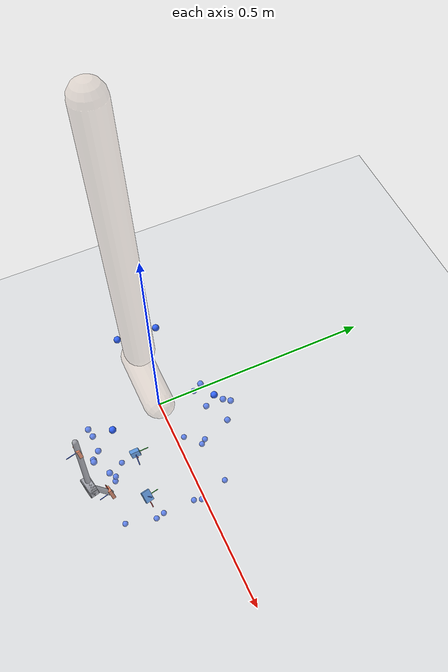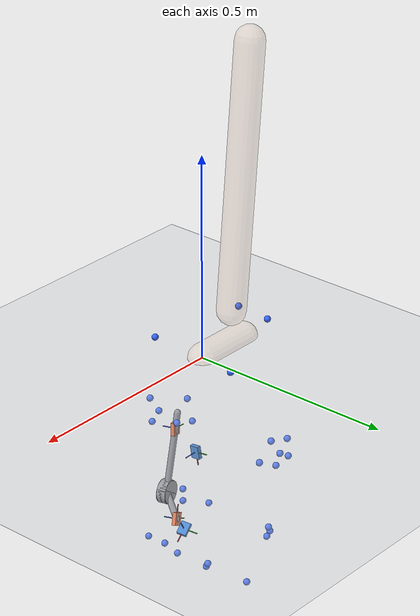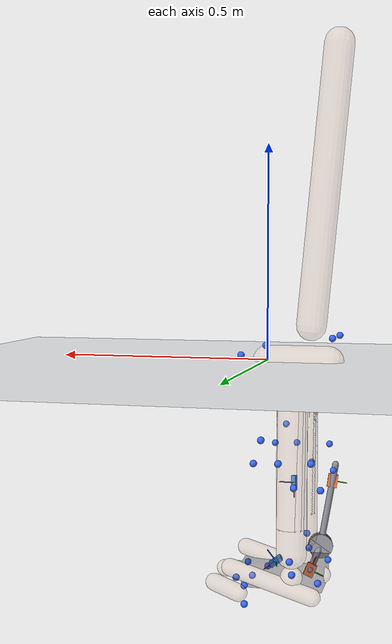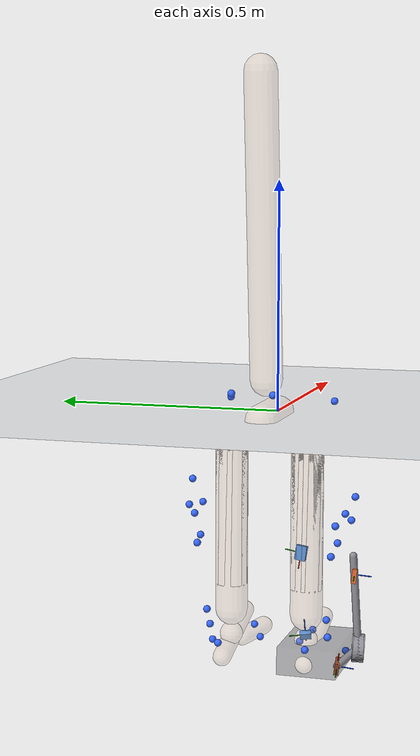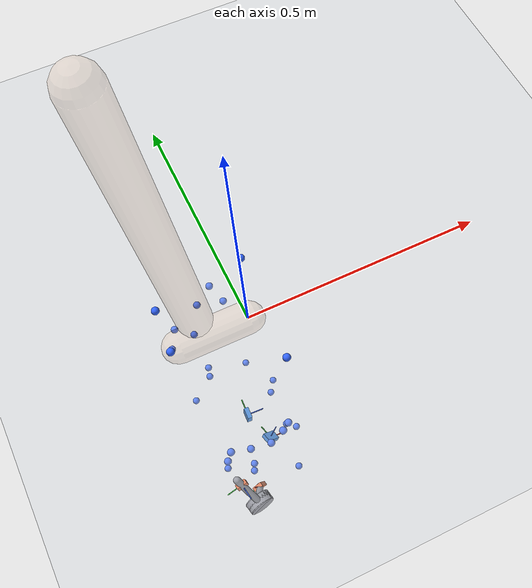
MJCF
<mujoco model="AB21">
  <compiler angle="radian" autolimits="true"/>
  <option timestep="0.005" gravity="0 0 -9.81"><flag contact="disable"/></option>
  <visual><global offwidth="1600" offheight="1200"/>
    <headlight ambient="0.55 0.55 0.55" diffuse="0.6 0.6 0.6"/></visual>
  <default><joint limited="false" damping="0"/><geom contype="0" conaffinity="0"/></default>
  <asset>
    <texture name="grid" type="2d" builtin="checker" rgb1="0.75 0.77 0.8" rgb2="0.85 0.87 0.9" width="512" height="512"/>
    <material name="grid" texture="grid" texrepeat="2 2" texuniform="true"/>
    <material name="skin" rgba="0.85 0.72 0.62 0.28"/>
  </asset>
  <worldbody>
    <light pos="0 0 4" dir="0 0 -1"/>
    <geom name="floor" type="plane" size="0 0 0.05" material="grid"/>
    <body name="pelvis" pos="0 0 0" quat="1 0 0 0">
      <joint name="pelvis_tx" type="slide" axis="1 0 0"/>
      <joint name="pelvis_ty" type="slide" axis="0 0 1"/>
      <joint name="pelvis_tz" type="slide" axis="0 -1 0"/>
      <joint name="pelvis_tilt" type="hinge" axis="0 -1 0"/>
      <joint name="pelvis_list" type="hinge" axis="1 0 0"/>
      <joint name="pelvis_rotation" type="hinge" axis="0 0 1"/>
      <inertial pos="-0.0707 0 0" mass="9.66417" diaginertia="0.096641693 0.096641693 0.096641693"/>
      <geom type="capsule" fromto="0 0 0 -0.1414 0 0" size="0.035" material="skin" mass="0"/>
      <site name="m_R_ASIS" pos="0.0279109 -0.11935242 0.023102941" size="0.008" rgba="0.2 0.4 1 1" group="2"/>
      <site name="m_L_ASIS" pos="0.039468074 0.11726658 0.021039981" size="0.008" rgba="0.2 0.4 1 1" group="2"/>
      <site name="m_L_PSIS" pos="-0.15723987 0.060651425 0.057657573" size="0.008" rgba="0.2 0.4 1 1" group="2"/>
      <site name="m_R_PSIS" pos="-0.16299944 -0.030730011 0.058019589" size="0.008" rgba="0.2 0.4 1 1" group="2"/>
      <body name="femur_r" pos="-0.0707 -0.0835 -0.0661" quat="1 0 0 0">
        <joint name="hip_flexion_r" type="hinge" axis="0 -1 0"/>
        <joint name="hip_adduction_r" type="hinge" axis="1 0 0"/>
        <joint name="hip_rotation_r" type="hinge" axis="0 0 1"/>
        <inertial pos="0 0 -0.15251744" mass="7.6327" diaginertia="0.076326997 0.076326997 0.076326997"/>
        <geom type="capsule" fromto="0 0 0 0 0 -0.30503488" size="0.035" material="skin" mass="0"/>
        <site name="m_R_Thigh_Upper" pos="0.056327767 -0.093128711 -0.11029452" size="0.008" rgba="0.2 0.4 1 1" group="2"/>
        <site name="m_R_Thigh_Front" pos="0.078951095 -0.066898076 -0.15386865" size="0.008" rgba="0.2 0.4 1 1" group="2"/>
        <site name="m_R_Thigh_Rear" pos="0.028642485 -0.090732659 -0.15548987" size="0.008" rgba="0.2 0.4 1 1" group="2"/>
        <site name="m_R_Knee_Lat" pos="-0.0040239363 -0.045599707 -0.36997076" size="0.008" rgba="0.2 0.4 1 1" group="2"/>
        <body name="tibia_r" pos="0 0 0" quat="1 0 0 0">
<geom name="gt_shank_axis_x" type="capsule" size="0.0012" fromto="0.01810 0.01650 -0.23190 0.01680 0.02192 -0.26645" rgba="1 0.1 0.1 1" contype="0" conaffinity="0" mass="0"/>
<geom name="gt_shank_axis_y" type="capsule" size="0.0012" fromto="0.01810 0.01650 -0.23190 0.01951 0.05106 -0.22653" rgba="0.1 0.8 0.1 1" contype="0" conaffinity="0" mass="0"/>
<geom name="gt_shank_axis_z" type="capsule" size="0.0012" fromto="0.01810 0.01650 -0.23190 0.05305 0.01531 -0.23340" rgba="0.1 0.3 1 1" contype="0" conaffinity="0" mass="0"/>
<geom name="exo_shank_axis_x" type="capsule" size="0.0012" fromto="-0.05688 -0.11590 -0.25143 -0.06147 -0.12016 -0.21700" rgba="1 0.1 0.1 1" contype="0" conaffinity="0" mass="0"/>
<geom name="exo_shank_axis_y" type="capsule" size="0.0012" fromto="-0.05688 -0.11590 -0.25143 -0.09111 -0.12103 -0.25663" rgba="0.1 0.8 0.1 1" contype="0" conaffinity="0" mass="0"/>
<geom name="exo_shank_axis_z" type="capsule" size="0.0012" fromto="-0.05688 -0.11590 -0.25143 -0.05120 -0.15026 -0.25493" rgba="0.1 0.3 1 1" contype="0" conaffinity="0" mass="0"/>
<geom name="encoder_shank" type="cylinder" size="0.03 0.012" fromto="-0.02539 -0.13161 -0.41765 -0.02961 -0.10799 -0.41735" rgba="0.55 0.55 0.58 1" contype="0" conaffinity="0" mass="0"/>
<geom name="strut_shank" type="capsule" size="0.008" fromto="-0.02750 -0.11980 -0.41750 -0.06422 -0.11492 -0.20992" rgba="0.55 0.55 0.58 1" contype="0" conaffinity="0" mass="0"/>
          <joint name="knee_r_translation1" type="slide" axis="1 0 0"/>
          <joint name="knee_r_translation2" type="slide" axis="0 0 1"/>
          <joint name="knee_angle_r" type="hinge" axis="0 -1 0"/>
          <inertial pos="0 0 -0.18127775" mass="3.04236" diaginertia="0.030423629 0.030423629 0.030423629"/>
          <geom type="capsule" fromto="0 0 0 0 0 -0.36255549" size="0.035" material="skin" mass="0"/>
          <site name="m_R_Shank_Upper" pos="-0.054113278 -0.073733299 -0.15214398" size="0.008" rgba="0.2 0.4 1 1" group="2"/>
          <site name="m_R_Shank_Front" pos="-0.010707813 -0.069509584 -0.19826869" size="0.008" rgba="0.2 0.4 1 1" group="2"/>
          <site name="m_R_Shank_Rear" pos="-0.064336188 -0.067138106 -0.21573565" size="0.008" rgba="0.2 0.4 1 1" group="2"/>
          <site name="m_R_Ankle_Lat" pos="-0.0082963271 -0.049334227 -0.40674132" size="0.008" rgba="0.2 0.4 1 1" group="2"/>
          <site name="gt_shank_imu" type="box" size="0.016 0.012 0.005" pos="0.0181 0.0165 -0.2319" quat="0.69053522 0.067846102 0.71891564 0.041452551" rgba="0.16 0.47 0.84 1" group="1"/>
          <site name="exo_shank_imu" type="box" size="0.016 0.012 0.005" pos="-0.056879 -0.115899 -0.251434" quat="0.39452299 0.52800473 -0.52068448 0.54263274" rgba="0.92 0.41 0.20 1" group="1"/>
          <body name="talus_r" pos="0 0 -0.41751168" quat="1 0 0 0">
            <joint name="ankle_angle_r" type="hinge" axis="-0.10501355 -0.97912632 -0.17402245"/>
            <inertial pos="0 0 0" mass="0.0820597" diaginertia="0.00082059686 0.00082059686 0.00082059686"/>
            <geom type="sphere" size="0.025" material="skin" mass="0"/>
            <body name="calcn_r" pos="-0.047353592 -0.0076899826 -0.040731663" quat="1 0 0 0">
<geom name="gt_foot_axis_x" type="capsule" size="0.0012" fromto="0.10920 0.02320 0.03200 0.13710 0.02783 0.01137" rgba="1 0.1 0.1 1" contype="0" conaffinity="0" mass="0"/>
<geom name="gt_foot_axis_y" type="capsule" size="0.0012" fromto="0.10920 0.02320 0.03200 0.10106 0.05707 0.02859" rgba="0.1 0.8 0.1 1" contype="0" conaffinity="0" mass="0"/>
<geom name="gt_foot_axis_z" type="capsule" size="0.0012" fromto="0.10920 0.02320 0.03200 0.12871 0.03071 0.06007" rgba="0.1 0.3 1 1" contype="0" conaffinity="0" mass="0"/>
<geom name="exo_foot_axis_x" type="capsule" size="0.0012" fromto="0.03874 -0.06324 -0.00945 0.02522 -0.07023 0.02207" rgba="1 0.1 0.1 1" contype="0" conaffinity="0" mass="0"/>
<geom name="exo_foot_axis_y" type="capsule" size="0.0012" fromto="0.03874 -0.06324 -0.00945 0.00704 -0.06683 -0.02385" rgba="0.1 0.8 0.1 1" contype="0" conaffinity="0" mass="0"/>
<geom name="exo_foot_axis_z" type="capsule" size="0.0012" fromto="0.03874 -0.06324 -0.00945 0.04485 -0.09735 -0.01439" rgba="0.1 0.3 1 1" contype="0" conaffinity="0" mass="0"/>
<geom name="encoder_foot" type="cylinder" size="0.03 0.012" fromto="0.02248 -0.12376 0.03973 0.01712 -0.10044 0.04167" rgba="0.55 0.55 0.58 1" contype="0" conaffinity="0" mass="0"/>
<geom name="strut_foot" type="capsule" size="0.008" fromto="0.01980 -0.11210 0.04070 0.03874 -0.06324 -0.00945" rgba="0.55 0.55 0.58 1" contype="0" conaffinity="0" mass="0"/>
<geom name="shoe" type="box" pos="0.09063 -0.00498 0.00357" size="0.09674 0.06423 0.03000" rgba="0.15 0.15 0.18 0.35" contype="0" conaffinity="0" mass="0"/>
              <joint name="subtalar_angle_r" type="hinge" axis="0.78717961 0.12094949 0.60474746"/>
              <inertial pos="0.09348784 0 0.028046352" mass="1.02575" diaginertia="0.010257461 0.010257461 0.010257461"/>
              <geom type="capsule" fromto="0 0 0 0.18697568 0 0.056092704" size="0.02" material="skin" mass="0"/>
              <site name="m_R_Heel" pos="-0.013106287 -0.0042593424 0.03564055" size="0.008" rgba="0.2 0.4 1 1" group="2"/>
              <site name="m_R_Toe_Lat" pos="0.14391947 -0.059942662 -0.0064262944" size="0.008" rgba="0.2 0.4 1 1" group="2"/>
              <site name="m_R_Toe_Med" pos="0.16185082 0.048525901 4.3160098e-05" size="0.008" rgba="0.2 0.4 1 1" group="2"/>
              <site name="m_R_Toe_Tip" pos="0.17737545 0.022375265 0.02467927" size="0.008" rgba="0.2 0.4 1 1" group="2"/>
              <site name="gt_foot_imu" type="box" size="0.016 0.012 0.005" pos="0.1092 0.0232 0.032" quat="0.94428747 -0.082611618 0.30357441 0.096638891" rgba="0.16 0.47 0.84 1" group="1"/>
              <site name="exo_foot_imu" type="box" size="0.016 0.012 0.005" pos="0.038742 -0.063242 -0.009449" quat="-0.30409032 -0.4629226 0.59684708 -0.58052158" rgba="0.92 0.41 0.20 1" group="1"/>
              <body name="toes_r" pos="0.16715626 -0.0010096687 -0.0018697568" quat="1 0 0 0">
                <joint name="mtp_angle_r" type="hinge" axis="-0.5809544 -0.81393611 0"/>
                <inertial pos="0.032346793 0.016360372 0.0056092704" mass="0.177741" diaginertia="0.0017774128 0.0017774128 0.0017774128"/>
                <geom type="capsule" fromto="0 0 0 0.064693585 0.032720744 0.011218541" size="0.02" material="skin" mass="0"/>
              </body>
            </body>
          </body>
        </body>
      </body>
      <body name="femur_l" pos="-0.0707 0.0835 -0.0661" quat="1 0 0 0">
        <joint name="hip_flexion_l" type="hinge" axis="0 -1 0"/>
        <joint name="hip_adduction_l" type="hinge" axis="-1 0 0"/>
        <joint name="hip_rotation_l" type="hinge" axis="0 0 -1"/>
        <inertial pos="0 0 -0.15251744" mass="7.6327" diaginertia="0.076326997 0.076326997 0.076326997"/>
        <geom type="capsule" fromto="0 0 0 0 0 -0.30503488" size="0.035" material="skin" mass="0"/>
        <site name="m_L_Thigh_Upper" pos="0.051152822 0.10429054 -0.090116287" size="0.008" rgba="0.2 0.4 1 1" group="2"/>
        <site name="m_L_Thigh_Front" pos="0.070697774 0.086766379 -0.14509618" size="0.008" rgba="0.2 0.4 1 1" group="2"/>
        <site name="m_L_Thigh_Rear" pos="0.014007228 0.1006137 -0.14071983" size="0.008" rgba="0.2 0.4 1 1" group="2"/>
        <site name="m_L_Knee_Lat" pos="-0.0044970104 0.054475675 -0.36739359" size="0.008" rgba="0.2 0.4 1 1" group="2"/>
        <body name="tibia_l" pos="0 0 0" quat="1 0 0 0">
          <joint name="knee_l_translation1" type="slide" axis="1 0 0"/>
          <joint name="knee_l_translation2" type="slide" axis="0 0 1"/>
          <joint name="knee_angle_l" type="hinge" axis="0 -1 0"/>
          <inertial pos="0 0 -0.18127775" mass="3.04236" diaginertia="0.030423629 0.030423629 0.030423629"/>
          <geom type="capsule" fromto="0 0 0 0 0 -0.36255549" size="0.035" material="skin" mass="0"/>
          <site name="m_L_Shank_Upper" pos="-0.053086356 0.067550916 -0.14384293" size="0.008" rgba="0.2 0.4 1 1" group="2"/>
          <site name="m_L_Shank_Front" pos="-0.01488433 0.066050249 -0.1995567" size="0.008" rgba="0.2 0.4 1 1" group="2"/>
          <site name="m_L_Shank_Rear" pos="-0.072413895 0.055816907 -0.20373716" size="0.008" rgba="0.2 0.4 1 1" group="2"/>
          <site name="m_L_Ankle_Lat" pos="-0.0085227098 0.046205739 -0.39875381" size="0.008" rgba="0.2 0.4 1 1" group="2"/>
          <body name="talus_l" pos="0 0 -0.41751168" quat="1 0 0 0">
            <joint name="ankle_angle_l" type="hinge" axis="0.10501355 -0.97912632 0.17402245"/>
            <inertial pos="0 0 0" mass="0.0820597" diaginertia="0.00082059686 0.00082059686 0.00082059686"/>
            <geom type="sphere" size="0.025" material="skin" mass="0"/>
            <body name="calcn_l" pos="-0.047353592 0.0076899826 -0.040731663" quat="1 0 0 0">
              <joint name="subtalar_angle_l" type="hinge" axis="-0.78717961 0.12094949 -0.60474746"/>
              <inertial pos="0.09348784 0 0.028046352" mass="1.02575" diaginertia="0.010257461 0.010257461 0.010257461"/>
              <geom type="capsule" fromto="0 0 0 0.18697568 0 0.056092704" size="0.02" material="skin" mass="0"/>
              <site name="m_L_Heel" pos="-0.014195994 0.004869733 0.034813855" size="0.008" rgba="0.2 0.4 1 1" group="2"/>
              <site name="m_L_Toe_Lat" pos="0.14078318 0.062848401 -0.0063003657" size="0.008" rgba="0.2 0.4 1 1" group="2"/>
              <site name="m_L_Toe_Med" pos="0.16280221 -0.042617362 0.0023986994" size="0.008" rgba="0.2 0.4 1 1" group="2"/>
              <site name="m_L_Toe_Tip" pos="0.17808207 -0.024787572 0.025649741" size="0.008" rgba="0.2 0.4 1 1" group="2"/>
              <body name="toes_l" pos="0.16715626 0.0010096687 -0.0018697568" quat="1 0 0 0">
                <joint name="mtp_angle_l" type="hinge" axis="0.5809544 -0.81393611 0"/>
                <inertial pos="0.032346793 -0.016360372 0.0056092704" mass="0.177741" diaginertia="0.0017774128 0.0017774128 0.0017774128"/>
                <geom type="capsule" fromto="0 0 0 0.064693585 -0.032720744 0.011218541" size="0.02" material="skin" mass="0"/>
              </body>
            </body>
          </body>
        </body>
      </body>
      <body name="torso" pos="-0.1007 0 0.0815" quat="1 0 0 0">
        <joint name="lumbar_extension" type="hinge" axis="0 -1 0"/>
        <joint name="lumbar_bending" type="hinge" axis="1 0 0"/>
        <joint name="lumbar_rotation" type="hinge" axis="0 0 1"/>
        <inertial pos="-0.03 0 0.32" mass="28.0944" diaginertia="0.28094447 0.28094447 0.28094447"/>
        <geom type="capsule" fromto="0 0 0 -0.06 0 0.64" size="0.035" material="skin" mass="0"/>
      </body>
    </body>
  </worldbody>
  <sensor>
<accelerometer name="gt_foot_imu_acc" site="gt_foot_imu"/>
<gyro name="gt_foot_imu_gyr" site="gt_foot_imu"/>
<accelerometer name="exo_foot_imu_acc" site="exo_foot_imu"/>
<gyro name="exo_foot_imu_gyr" site="exo_foot_imu"/>
<accelerometer name="gt_shank_imu_acc" site="gt_shank_imu"/>
<gyro name="gt_shank_imu_gyr" site="gt_shank_imu"/>
<accelerometer name="exo_shank_imu_acc" site="exo_shank_imu"/>
<gyro name="exo_shank_imu_gyr" site="exo_shank_imu"/>
</sensor>
</mujoco>
